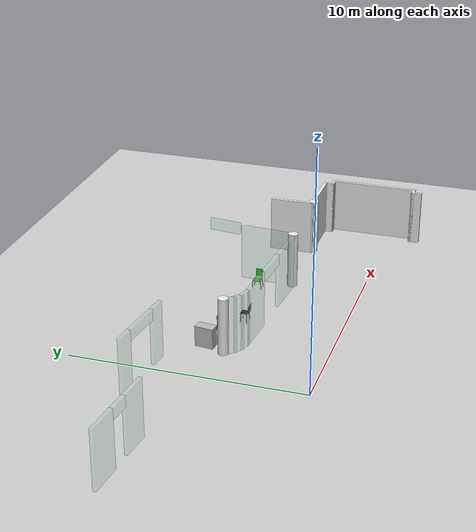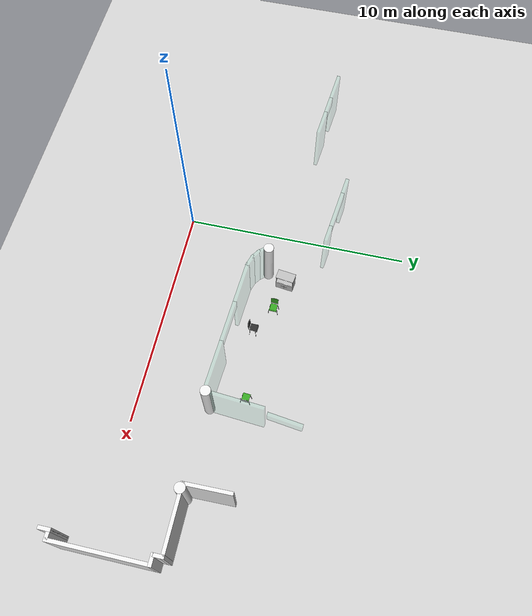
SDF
<sdf version="1.6">
 <world name="default">
  <model name="ground_plane">
   <static>1</static>
   <link name="link">
    <collision name="collision">
     <geometry><plane><normal>0 0 1</normal><size>100 100</size></plane></geometry>
     <surface><friction><ode><mu>100</mu><mu2>50</mu2></ode></friction></surface>
    </collision>
    <visual name="visual">
     <cast_shadows>0</cast_shadows>
     <geometry><plane><normal>0 0 1</normal><size>100 100</size></plane></geometry>
     <material>
      <script><uri>file://media/materials/scripts/gazebo.material</uri><name>Gazebo/Grey</name></script>
     </material>
    </visual>
   </link>
  </model>
  <model name="Glass_walls">
   <link name="Wall_10">
    <pose>8.18678 -0.842723 0 0 -0 1.49902</pose>
    <inertial>
     <mass>1</mass>
     <inertia><ixx>1</ixx><ixy>0</ixy><ixz>0</ixz><iyy>1</iyy><iyz>0</iyz><izz>1</izz></inertia>
    </inertial>
    <visual name="Wall_10_Visual">
     <pose>0 0 1.25 0 -0 0</pose>
     <geometry><box><size>2.51541 0.15 2.5</size></box></geometry>
     <material>
      <script><uri>file://media/materials/scripts/gazebo.material</uri><name>Gazebo/Grey</name></script>
      <ambient>0.435 0.796 0.675 1</ambient>
      <diffuse>0.7 0.7 0.7 1</diffuse>
      <specular>0.01 0.01 0.01 1</specular>
      <emissive>0 0 0 1</emissive>
      <shader type="vertex"><normal_map>__default__</normal_map></shader>
     </material>
     <meta><layer>0</layer></meta>
     <transparency>0.8</transparency>
    </visual>
    <collision name="Wall_10_Collision">
     <pose>0 0 1.25 0 -0 0</pose>
     <geometry><box><size>2.51541 0.15 2.5</size></box></geometry>
     <surface>
      <friction>
       <ode><mu>1</mu><mu2>1</mu2><fdir1>0 0 0</fdir1><slip1>0</slip1><slip2>0</slip2></ode>
       <torsional>
        <coefficient>1</coefficient>
        <patch_radius>0</patch_radius>
        <surface_radius>0</surface_radius>
        <use_patch_radius>1</use_patch_radius>
        <ode><slip>0</slip></ode>
       </torsional>
      </friction>
      <bounce><restitution_coefficient>0</restitution_coefficient><threshold>1e+06</threshold></bounce>
      <contact>
       <collide_without_contact>0</collide_without_contact>
       <collide_without_contact_bitmask>1</collide_without_contact_bitmask>
       <collide_bitmask>1</collide_bitmask>
       <ode>
        <soft_cfm>0</soft_cfm>
        <soft_erp>0.2</soft_erp>
        <kp>1e+13</kp>
        <kd>1</kd>
        <max_vel>0.01</max_vel>
        <min_depth>0</min_depth>
       </ode>
       <bullet>
        <split_impulse>1</split_impulse>
        <split_impulse_penetration_threshold>-0.01</split_impulse_penetration_threshold>
        <soft_cfm>0</soft_cfm>
        <soft_erp>0.2</soft_erp>
        <kp>1e+13</kp>
        <kd>1</kd>
       </bullet>
      </contact>
     </surface>
    </collision>
   </link>
   <link name="Wall_12">
    <pose>1.76645 -1.4266 0 0 0 -0.605125</pose>
    <inertial>
     <mass>1</mass>
     <inertia><ixx>1</ixx><ixy>0</ixy><ixz>0</ixz><iyy>1</iyy><iyz>0</iyz><izz>1</izz></inertia>
    </inertial>
    <visual name="Wall_12_Visual">
     <pose>0 0 1.25 0 -0 0</pose>
     <geometry><box><size>0.49057 0.15 2.5</size></box></geometry>
     <material>
      <script><uri>file://media/materials/scripts/gazebo.material</uri><name>Gazebo/Grey</name></script>
      <ambient>0.435 0.796 0.675 1</ambient>
      <diffuse>0.7 0.7 0.7 1</diffuse>
      <specular>0.01 0.01 0.01 1</specular>
      <emissive>0 0 0 1</emissive>
      <shader type="vertex"><normal_map>__default__</normal_map></shader>
     </material>
     <meta><layer>0</layer></meta>
     <transparency>0.8</transparency>
    </visual>
    <collision name="Wall_12_Collision">
     <pose>0 0 1.25 0 -0 0</pose>
     <geometry><box><size>0.49057 0.15 2.5</size></box></geometry>
     <surface>
      <friction>
       <ode><mu>1</mu><mu2>1</mu2><fdir1>0 0 0</fdir1><slip1>0</slip1><slip2>0</slip2></ode>
       <torsional>
        <coefficient>1</coefficient>
        <patch_radius>0</patch_radius>
        <surface_radius>0</surface_radius>
        <use_patch_radius>1</use_patch_radius>
        <ode><slip>0</slip></ode>
       </torsional>
      </friction>
      <bounce><restitution_coefficient>0</restitution_coefficient><threshold>1e+06</threshold></bounce>
      <contact>
       <collide_without_contact>0</collide_without_contact>
       <collide_without_contact_bitmask>1</collide_without_contact_bitmask>
       <collide_bitmask>1</collide_bitmask>
       <ode>
        <soft_cfm>0</soft_cfm>
        <soft_erp>0.2</soft_erp>
        <kp>1e+13</kp>
        <kd>1</kd>
        <max_vel>0.01</max_vel>
        <min_depth>0</min_depth>
       </ode>
       <bullet>
        <split_impulse>1</split_impulse>
        <split_impulse_penetration_threshold>-0.01</split_impulse_penetration_threshold>
        <soft_cfm>0</soft_cfm>
        <soft_erp>0.2</soft_erp>
        <kp>1e+13</kp>
        <kd>1</kd>
       </bullet>
      </contact>
     </surface>
    </collision>
   </link>
   <link name="Wall_13">
    <pose>2.11043 -1.58974 0 0 0 -0.314232</pose>
    <inertial>
     <mass>1</mass>
     <inertia><ixx>1</ixx><ixy>0</ixy><ixz>0</ixz><iyy>1</iyy><iyz>0</iyz><izz>1</izz></inertia>
    </inertial>
    <visual name="Wall_13_Visual">
     <pose>0 0 1.25 0 -0 0</pose>
     <geometry><box><size>0.57887 0.15 2.5</size></box></geometry>
     <material>
      <script><uri>file://media/materials/scripts/gazebo.material</uri><name>Gazebo/Grey</name></script>
      <ambient>0.435 0.796 0.675 1</ambient>
      <diffuse>0.7 0.7 0.7 1</diffuse>
      <specular>0.01 0.01 0.01 1</specular>
      <emissive>0 0 0 1</emissive>
      <shader type="vertex"><normal_map>__default__</normal_map></shader>
     </material>
     <meta><layer>0</layer></meta>
     <transparency>0.8</transparency>
    </visual>
    <collision name="Wall_13_Collision">
     <pose>0 0 1.25 0 -0 0</pose>
     <geometry><box><size>0.57887 0.15 2.5</size></box></geometry>
     <surface>
      <friction>
       <ode><mu>1</mu><mu2>1</mu2><fdir1>0 0 0</fdir1><slip1>0</slip1><slip2>0</slip2></ode>
       <torsional>
        <coefficient>1</coefficient>
        <patch_radius>0</patch_radius>
        <surface_radius>0</surface_radius>
        <use_patch_radius>1</use_patch_radius>
        <ode><slip>0</slip></ode>
       </torsional>
      </friction>
      <bounce><restitution_coefficient>0</restitution_coefficient><threshold>1e+06</threshold></bounce>
      <contact>
       <collide_without_contact>0</collide_without_contact>
       <collide_without_contact_bitmask>1</collide_without_contact_bitmask>
       <collide_bitmask>1</collide_bitmask>
       <ode>
        <soft_cfm>0</soft_cfm>
        <soft_erp>0.2</soft_erp>
        <kp>1e+13</kp>
        <kd>1</kd>
        <max_vel>0.01</max_vel>
        <min_depth>0</min_depth>
       </ode>
       <bullet>
        <split_impulse>1</split_impulse>
        <split_impulse_penetration_threshold>-0.01</split_impulse_penetration_threshold>
        <soft_cfm>0</soft_cfm>
        <soft_erp>0.2</soft_erp>
        <kp>1e+13</kp>
        <kd>1</kd>
       </bullet>
      </contact>
     </surface>
    </collision>
   </link>
   <link name="Wall_14">
    <pose>5.20817 -1.8392 0 0 0 -0.063217</pose>
    <inertial>
     <mass>1</mass>
     <inertia><ixx>1</ixx><ixy>0</ixy><ixz>0</ixz><iyy>1</iyy><iyz>0</iyz><izz>1</izz></inertia>
    </inertial>
    <visual name="Wall_14_Visual_2">
     <pose>-0.177864 0 2.25 0 -0 0</pose>
     <geometry><box><size>1.8 0.15 0.5</size></box></geometry>
     <material>
      <script><uri>file://media/materials/scripts/gazebo.material</uri><name>Gazebo/Grey</name></script>
      <ambient>0.435 0.796 0.675 1</ambient>
      <diffuse>0.7 0.7 0.7 1</diffuse>
      <specular>0.01 0.01 0.01 1</specular>
      <emissive>0 0 0 1</emissive>
      <shader type="vertex"><normal_map>__default__</normal_map></shader>
     </material>
     <meta><layer>0</layer></meta>
     <transparency>0.8</transparency>
    </visual>
    <visual name="Wall_14_Visual_1">
     <pose>1.84837 0 1.25 0 -0 0</pose>
     <geometry><box><size>2.25246 0.15 2.5</size></box></geometry>
     <material>
      <script><uri>file://media/materials/scripts/gazebo.material</uri><name>Gazebo/Grey</name></script>
      <ambient>0.435 0.796 0.675 1</ambient>
      <diffuse>0.7 0.7 0.7 1</diffuse>
      <specular>0.01 0.01 0.01 1</specular>
      <emissive>0 0 0 1</emissive>
      <shader type="vertex"><normal_map>__default__</normal_map></shader>
     </material>
     <meta><layer>0</layer></meta>
     <transparency>0.8</transparency>
    </visual>
    <visual name="Wall_14_Visual_0">
     <pose>-2.02623 0 1.25 0 -0 0</pose>
     <geometry><box><size>1.89673 0.15 2.5</size></box></geometry>
     <material>
      <script><uri>file://media/materials/scripts/gazebo.material</uri><name>Gazebo/Grey</name></script>
      <ambient>0.435 0.796 0.675 1</ambient>
      <diffuse>0.7 0.7 0.7 1</diffuse>
      <specular>0.01 0.01 0.01 1</specular>
      <emissive>0 0 0 1</emissive>
      <shader type="vertex"><normal_map>__default__</normal_map></shader>
     </material>
     <meta><layer>0</layer></meta>
     <transparency>0.8</transparency>
    </visual>
    <collision name="Wall_14_Collision_1">
     <pose>1.84837 0 1.25 0 -0 0</pose>
     <geometry><box><size>2.25246 0.15 2.5</size></box></geometry>
     <surface>
      <friction>
       <ode><mu>1</mu><mu2>1</mu2><fdir1>0 0 0</fdir1><slip1>0</slip1><slip2>0</slip2></ode>
       <torsional>
        <coefficient>1</coefficient>
        <patch_radius>0</patch_radius>
        <surface_radius>0</surface_radius>
        <use_patch_radius>1</use_patch_radius>
        <ode><slip>0</slip></ode>
       </torsional>
      </friction>
      <bounce><restitution_coefficient>0</restitution_coefficient><threshold>1e+06</threshold></bounce>
      <contact>
       <collide_without_contact>0</collide_without_contact>
       <collide_without_contact_bitmask>1</collide_without_contact_bitmask>
       <collide_bitmask>1</collide_bitmask>
       <ode>
        <soft_cfm>0</soft_cfm>
        <soft_erp>0.2</soft_erp>
        <kp>1e+13</kp>
        <kd>1</kd>
        <max_vel>0.01</max_vel>
        <min_depth>0</min_depth>
       </ode>
       <bullet>
        <split_impulse>1</split_impulse>
        <split_impulse_penetration_threshold>-0.01</split_impulse_penetration_threshold>
        <soft_cfm>0</soft_cfm>
        <soft_erp>0.2</soft_erp>
        <kp>1e+13</kp>
        <kd>1</kd>
       </bullet>
      </contact>
     </surface>
    </collision>
    <collision name="Wall_14_Collision_0">
     <pose>-2.02623 0 1.25 0 -0 0</pose>
     <geometry><box><size>1.89673 0.15 2.5</size></box></geometry>
     <surface>
      <friction>
       <ode><mu>1</mu><mu2>1</mu2><fdir1>0 0 0</fdir1><slip1>0</slip1><slip2>0</slip2></ode>
       <torsional>
        <coefficient>1</coefficient>
        <patch_radius>0</patch_radius>
        <surface_radius>0</surface_radius>
        <use_patch_radius>1</use_patch_radius>
        <ode><slip>0</slip></ode>
       </torsional>
      </friction>
      <bounce><restitution_coefficient>0</restitution_coefficient><threshold>1e+06</threshold></bounce>
      <contact>
       <collide_without_contact>0</collide_without_contact>
       <collide_without_contact_bitmask>1</collide_without_contact_bitmask>
       <collide_bitmask>1</collide_bitmask>
       <ode>
        <soft_cfm>0</soft_cfm>
        <soft_erp>0.2</soft_erp>
        <kp>1e+13</kp>
        <kd>1</kd>
        <max_vel>0.01</max_vel>
        <min_depth>0</min_depth>
       </ode>
       <bullet>
        <split_impulse>1</split_impulse>
        <split_impulse_penetration_threshold>-0.01</split_impulse_penetration_threshold>
        <soft_cfm>0</soft_cfm>
        <soft_erp>0.2</soft_erp>
        <kp>1e+13</kp>
        <kd>1</kd>
       </bullet>
      </contact>
     </surface>
    </collision>
    <collision name="Wall_14_Collision_2">
     <pose>-0.177864 0 2.25 0 -0 0</pose>
     <geometry><box><size>1.8 0.15 0.5</size></box></geometry>
     <surface>
      <friction>
       <ode><mu>1</mu><mu2>1</mu2><fdir1>0 0 0</fdir1><slip1>0</slip1><slip2>0</slip2></ode>
       <torsional>
        <coefficient>1</coefficient>
        <patch_radius>0</patch_radius>
        <surface_radius>0</surface_radius>
        <use_patch_radius>1</use_patch_radius>
        <ode><slip>0</slip></ode>
       </torsional>
      </friction>
      <bounce><restitution_coefficient>0</restitution_coefficient><threshold>1e+06</threshold></bounce>
      <contact>
       <collide_without_contact>0</collide_without_contact>
       <collide_without_contact_bitmask>1</collide_without_contact_bitmask>
       <collide_bitmask>1</collide_bitmask>
       <ode>
        <soft_cfm>0</soft_cfm>
        <soft_erp>0.2</soft_erp>
        <kp>1e+13</kp>
        <kd>1</kd>
        <max_vel>0.01</max_vel>
        <min_depth>0</min_depth>
       </ode>
       <bullet>
        <split_impulse>1</split_impulse>
        <split_impulse_penetration_threshold>-0.01</split_impulse_penetration_threshold>
        <soft_cfm>0</soft_cfm>
        <soft_erp>0.2</soft_erp>
        <kp>1e+13</kp>
        <kd>1</kd>
       </bullet>
      </contact>
     </surface>
    </collision>
   </link>
   <link name="Wall_16">
    <pose>-1.20178 1.53997 0 0 0 -0.111358</pose>
    <inertial>
     <mass>1</mass>
     <inertia><ixx>1</ixx><ixy>0</ixy><ixz>0</ixz><iyy>1</iyy><iyz>0</iyz><izz>1</izz></inertia>
    </inertial>
    <visual name="Wall_16_Visual_0">
     <pose>-1.28798 0 1.25 0 -0 0</pose>
     <geometry><box><size>0.785518 0.15 2.5</size></box></geometry>
     <material>
      <script><uri>file://media/materials/scripts/gazebo.material</uri><name>Gazebo/Grey</name></script>
      <ambient>0.435 0.796 0.675 1</ambient>
      <diffuse>0.7 0.7 0.7 1</diffuse>
      <specular>0.01 0.01 0.01 1</specular>
      <emissive>0 0 0 1</emissive>
      <shader type="vertex"><normal_map>__default__</normal_map></shader>
     </material>
     <meta><layer>0</layer></meta>
     <transparency>0.8</transparency>
    </visual>
    <visual name="Wall_16_Visual_1">
     <pose>1.29276 0 1.25 0 -0 0</pose>
     <geometry><box><size>0.775955 0.15 2.5</size></box></geometry>
     <material>
      <script><uri>file://media/materials/scripts/gazebo.material</uri><name>Gazebo/Grey</name></script>
      <ambient>0.435 0.796 0.675 1</ambient>
      <diffuse>0.7 0.7 0.7 1</diffuse>
      <specular>0.01 0.01 0.01 1</specular>
      <emissive>0 0 0 1</emissive>
      <shader type="vertex"><normal_map>__default__</normal_map></shader>
     </material>
     <meta><layer>0</layer></meta>
     <transparency>0.8</transparency>
    </visual>
    <visual name="Wall_16_Visual_2">
     <pose>0.004782 0 2.25 0 -0 0</pose>
     <geometry><box><size>1.8 0.15 0.5</size></box></geometry>
     <material>
      <script><uri>file://media/materials/scripts/gazebo.material</uri><name>Gazebo/Grey</name></script>
      <ambient>0.435 0.796 0.675 1</ambient>
      <diffuse>0.7 0.7 0.7 1</diffuse>
      <specular>0.01 0.01 0.01 1</specular>
      <emissive>0 0 0 1</emissive>
      <shader type="vertex"><normal_map>__default__</normal_map></shader>
     </material>
     <meta><layer>0</layer></meta>
     <transparency>0.8</transparency>
    </visual>
    <collision name="Wall_16_Collision_0">
     <pose>-1.28798 0 1.25 0 -0 0</pose>
     <geometry><box><size>0.785518 0.15 2.5</size></box></geometry>
     <surface>
      <friction>
       <ode><mu>1</mu><mu2>1</mu2><fdir1>0 0 0</fdir1><slip1>0</slip1><slip2>0</slip2></ode>
       <torsional>
        <coefficient>1</coefficient>
        <patch_radius>0</patch_radius>
        <surface_radius>0</surface_radius>
        <use_patch_radius>1</use_patch_radius>
        <ode><slip>0</slip></ode>
       </torsional>
      </friction>
      <bounce><restitution_coefficient>0</restitution_coefficient><threshold>1e+06</threshold></bounce>
      <contact>
       <collide_without_contact>0</collide_without_contact>
       <collide_without_contact_bitmask>1</collide_without_contact_bitmask>
       <collide_bitmask>1</collide_bitmask>
       <ode>
        <soft_cfm>0</soft_cfm>
        <soft_erp>0.2</soft_erp>
        <kp>1e+13</kp>
        <kd>1</kd>
        <max_vel>0.01</max_vel>
        <min_depth>0</min_depth>
       </ode>
       <bullet>
        <split_impulse>1</split_impulse>
        <split_impulse_penetration_threshold>-0.01</split_impulse_penetration_threshold>
        <soft_cfm>0</soft_cfm>
        <soft_erp>0.2</soft_erp>
        <kp>1e+13</kp>
        <kd>1</kd>
       </bullet>
      </contact>
     </surface>
    </collision>
    <collision name="Wall_16_Collision_2">
     <pose>0.004782 0 2.25 0 -0 0</pose>
     <geometry><box><size>1.8 0.15 0.5</size></box></geometry>
     <surface>
      <friction>
       <ode><mu>1</mu><mu2>1</mu2><fdir1>0 0 0</fdir1><slip1>0</slip1><slip2>0</slip2></ode>
       <torsional>
        <coefficient>1</coefficient>
        <patch_radius>0</patch_radius>
        <surface_radius>0</surface_radius>
        <use_patch_radius>1</use_patch_radius>
        <ode><slip>0</slip></ode>
       </torsional>
      </friction>
      <bounce><restitution_coefficient>0</restitution_coefficient><threshold>1e+06</threshold></bounce>
      <contact>
       <collide_without_contact>0</collide_without_contact>
       <collide_without_contact_bitmask>1</collide_without_contact_bitmask>
       <collide_bitmask>1</collide_bitmask>
       <ode>
        <soft_cfm>0</soft_cfm>
        <soft_erp>0.2</soft_erp>
        <kp>1e+13</kp>
        <kd>1</kd>
        <max_vel>0.01</max_vel>
        <min_depth>0</min_depth>
       </ode>
       <bullet>
        <split_impulse>1</split_impulse>
        <split_impulse_penetration_threshold>-0.01</split_impulse_penetration_threshold>
        <soft_cfm>0</soft_cfm>
        <soft_erp>0.2</soft_erp>
        <kp>1e+13</kp>
        <kd>1</kd>
       </bullet>
      </contact>
     </surface>
    </collision>
    <collision name="Wall_16_Collision_1">
     <pose>1.29276 0 1.25 0 -0 0</pose>
     <geometry><box><size>0.775955 0.15 2.5</size></box></geometry>
     <surface>
      <friction>
       <ode><mu>1</mu><mu2>1</mu2><fdir1>0 0 0</fdir1><slip1>0</slip1><slip2>0</slip2></ode>
       <torsional>
        <coefficient>1</coefficient>
        <patch_radius>0</patch_radius>
        <surface_radius>0</surface_radius>
        <use_patch_radius>1</use_patch_radius>
        <ode><slip>0</slip></ode>
       </torsional>
      </friction>
      <bounce><restitution_coefficient>0</restitution_coefficient><threshold>1e+06</threshold></bounce>
      <contact>
       <collide_without_contact>0</collide_without_contact>
       <collide_without_contact_bitmask>1</collide_without_contact_bitmask>
       <collide_bitmask>1</collide_bitmask>
       <ode>
        <soft_cfm>0</soft_cfm>
        <soft_erp>0.2</soft_erp>
        <kp>1e+13</kp>
        <kd>1</kd>
        <max_vel>0.01</max_vel>
        <min_depth>0</min_depth>
       </ode>
       <bullet>
        <split_impulse>1</split_impulse>
        <split_impulse_penetration_threshold>-0.01</split_impulse_penetration_threshold>
        <soft_cfm>0</soft_cfm>
        <soft_erp>0.2</soft_erp>
        <kp>1e+13</kp>
        <kd>1</kd>
       </bullet>
      </contact>
     </surface>
    </collision>
   </link>
   <link name="Wall_18">
    <pose>8.55334 1.28019 0.999398 0 -0 1.44515</pose>
    <inertial>
     <mass>1</mass>
     <pose>0 0 1.25 0 -0 0</pose>
     <inertia><ixx>1</ixx><ixy>0</ixy><ixz>0</ixz><iyy>1</iyy><iyz>0</iyz><izz>1</izz></inertia>
    </inertial>
    <visual name="Wall_18_Visual_0">
     <pose>0 0 1.25 0 -0 0</pose>
     <geometry><box><size>1.44127 0.15 0.5</size></box></geometry>
     <material>
      <script><uri>file://media/materials/scripts/gazebo.material</uri><name>Gazebo/Grey</name></script>
      <ambient>0.435 0.796 0.675 1</ambient>
      <diffuse>0.7 0.7 0.7 1</diffuse>
      <specular>0.01 0.01 0.01 1</specular>
      <emissive>0 0 0 1</emissive>
      <shader type="vertex"><normal_map>__default__</normal_map></shader>
     </material>
     <meta><layer>0</layer></meta>
     <transparency>0.8</transparency>
    </visual>
    <collision name="Wall_18_Collision_0">
     <pose>0 0 1.25 0 -0 0</pose>
     <geometry><box><size>1.44127 0.15 0.5</size></box></geometry>
     <surface>
      <friction>
       <ode><mu>1</mu><mu2>1</mu2><fdir1>0 0 0</fdir1><slip1>0</slip1><slip2>0</slip2></ode>
       <torsional>
        <coefficient>1</coefficient>
        <patch_radius>0</patch_radius>
        <surface_radius>0</surface_radius>
        <use_patch_radius>1</use_patch_radius>
        <ode><slip>0</slip></ode>
       </torsional>
      </friction>
      <bounce><restitution_coefficient>0</restitution_coefficient><threshold>1e+06</threshold></bounce>
      <contact>
       <collide_without_contact>0</collide_without_contact>
       <collide_without_contact_bitmask>1</collide_without_contact_bitmask>
       <collide_bitmask>1</collide_bitmask>
       <ode>
        <soft_cfm>0</soft_cfm>
        <soft_erp>0.2</soft_erp>
        <kp>1e+13</kp>
        <kd>1</kd>
        <max_vel>0.01</max_vel>
        <min_depth>0</min_depth>
       </ode>
       <bullet>
        <split_impulse>1</split_impulse>
        <split_impulse_penetration_threshold>-0.01</split_impulse_penetration_threshold>
        <soft_cfm>0</soft_cfm>
        <soft_erp>0.2</soft_erp>
        <kp>1e+13</kp>
        <kd>1</kd>
       </bullet>
      </contact>
     </surface>
    </collision>
   </link>
   <link name="Wall_4">
    <pose>-6.95661 0.126193 -0.003941 0 0 -0.091842</pose>
    <inertial>
     <mass>1</mass>
     <inertia><ixx>1</ixx><ixy>0</ixy><ixz>0</ixz><iyy>1</iyy><iyz>0</iyz><izz>1</izz></inertia>
    </inertial>
    <visual name="Wall_4_Visual_0">
     <pose>-1.09152 0 1.25 0 -0 0</pose>
     <geometry><box><size>1.41183 0.15 2.5</size></box></geometry>
     <material>
      <script><uri>file://media/materials/scripts/gazebo.material</uri><name>Gazebo/Grey</name></script>
      <ambient>0.435 0.796 0.675 1</ambient>
      <diffuse>0.7 0.7 0.7 1</diffuse>
      <specular>0.01 0.01 0.01 1</specular>
      <emissive>0 0 0 1</emissive>
      <shader type="vertex"><normal_map>__default__</normal_map></shader>
     </material>
     <meta><layer>0</layer></meta>
     <transparency>0.8</transparency>
    </visual>
    <visual name="Wall_4_Visual_2">
     <pose>0.064394 0 2.25 0 -0 0</pose>
     <geometry><box><size>0.9 0.15 0.5</size></box></geometry>
     <material>
      <script><uri>file://media/materials/scripts/gazebo.material</uri><name>Gazebo/Grey</name></script>
      <ambient>0.435 0.796 0.675 1</ambient>
      <diffuse>0.7 0.7 0.7 1</diffuse>
      <specular>0.01 0.01 0.01 1</specular>
      <emissive>0 0 0 1</emissive>
      <shader type="vertex"><normal_map>__default__</normal_map></shader>
     </material>
     <meta><layer>0</layer></meta>
     <transparency>0.8</transparency>
    </visual>
    <visual name="Wall_4_Visual_1">
     <pose>1.15592 0 1.25 0 -0 0</pose>
     <geometry><box><size>1.28304 0.15 2.5</size></box></geometry>
     <material>
      <script><uri>file://media/materials/scripts/gazebo.material</uri><name>Gazebo/Grey</name></script>
      <ambient>0.435 0.796 0.675 1</ambient>
      <diffuse>0.7 0.7 0.7 1</diffuse>
      <specular>0.01 0.01 0.01 1</specular>
      <emissive>0 0 0 1</emissive>
      <shader type="vertex"><normal_map>__default__</normal_map></shader>
     </material>
     <meta><layer>0</layer></meta>
     <transparency>0.8</transparency>
    </visual>
    <collision name="Wall_4_Collision_0">
     <pose>-1.09152 0 1.25 0 -0 0</pose>
     <geometry><box><size>1.41183 0.15 2.5</size></box></geometry>
     <surface>
      <friction>
       <ode><mu>1</mu><mu2>1</mu2><fdir1>0 0 0</fdir1><slip1>0</slip1><slip2>0</slip2></ode>
       <torsional>
        <coefficient>1</coefficient>
        <patch_radius>0</patch_radius>
        <surface_radius>0</surface_radius>
        <use_patch_radius>1</use_patch_radius>
        <ode><slip>0</slip></ode>
       </torsional>
      </friction>
      <bounce><restitution_coefficient>0</restitution_coefficient><threshold>1e+06</threshold></bounce>
      <contact>
       <collide_without_contact>0</collide_without_contact>
       <collide_without_contact_bitmask>1</collide_without_contact_bitmask>
       <collide_bitmask>1</collide_bitmask>
       <ode>
        <soft_cfm>0</soft_cfm>
        <soft_erp>0.2</soft_erp>
        <kp>1e+13</kp>
        <kd>1</kd>
        <max_vel>0.01</max_vel>
        <min_depth>0</min_depth>
       </ode>
       <bullet>
        <split_impulse>1</split_impulse>
        <split_impulse_penetration_threshold>-0.01</split_impulse_penetration_threshold>
        <soft_cfm>0</soft_cfm>
        <soft_erp>0.2</soft_erp>
        <kp>1e+13</kp>
        <kd>1</kd>
       </bullet>
      </contact>
     </surface>
    </collision>
    <collision name="Wall_4_Collision_1">
     <pose>1.15592 0 1.25 0 -0 0</pose>
     <geometry><box><size>1.28304 0.15 2.5</size></box></geometry>
     <surface>
      <friction>
       <ode><mu>1</mu><mu2>1</mu2><fdir1>0 0 0</fdir1><slip1>0</slip1><slip2>0</slip2></ode>
       <torsional>
        <coefficient>1</coefficient>
        <patch_radius>0</patch_radius>
        <surface_radius>0</surface_radius>
        <use_patch_radius>1</use_patch_radius>
        <ode><slip>0</slip></ode>
       </torsional>
      </friction>
      <bounce><restitution_coefficient>0</restitution_coefficient><threshold>1e+06</threshold></bounce>
      <contact>
       <collide_without_contact>0</collide_without_contact>
       <collide_without_contact_bitmask>1</collide_without_contact_bitmask>
       <collide_bitmask>1</collide_bitmask>
       <ode>
        <soft_cfm>0</soft_cfm>
        <soft_erp>0.2</soft_erp>
        <kp>1e+13</kp>
        <kd>1</kd>
        <max_vel>0.01</max_vel>
        <min_depth>0</min_depth>
       </ode>
       <bullet>
        <split_impulse>1</split_impulse>
        <split_impulse_penetration_threshold>-0.01</split_impulse_penetration_threshold>
        <soft_cfm>0</soft_cfm>
        <soft_erp>0.2</soft_erp>
        <kp>1e+13</kp>
        <kd>1</kd>
       </bullet>
      </contact>
     </surface>
    </collision>
    <collision name="Wall_4_Collision_2">
     <pose>0.064394 0 2.25 0 -0 0</pose>
     <geometry><box><size>0.9 0.15 0.5</size></box></geometry>
     <surface>
      <friction>
       <ode><mu>1</mu><mu2>1</mu2><fdir1>0 0 0</fdir1><slip1>0</slip1><slip2>0</slip2></ode>
       <torsional>
        <coefficient>1</coefficient>
        <patch_radius>0</patch_radius>
        <surface_radius>0</surface_radius>
        <use_patch_radius>1</use_patch_radius>
        <ode><slip>0</slip></ode>
       </torsional>
      </friction>
      <bounce><restitution_coefficient>0</restitution_coefficient><threshold>1e+06</threshold></bounce>
      <contact>
       <collide_without_contact>0</collide_without_contact>
       <collide_without_contact_bitmask>1</collide_without_contact_bitmask>
       <collide_bitmask>1</collide_bitmask>
       <ode>
        <soft_cfm>0</soft_cfm>
        <soft_erp>0.2</soft_erp>
        <kp>1e+13</kp>
        <kd>1</kd>
        <max_vel>0.01</max_vel>
        <min_depth>0</min_depth>
       </ode>
       <bullet>
        <split_impulse>1</split_impulse>
        <split_impulse_penetration_threshold>-0.01</split_impulse_penetration_threshold>
        <soft_cfm>0</soft_cfm>
        <soft_erp>0.2</soft_erp>
        <kp>1e+13</kp>
        <kd>1</kd>
       </bullet>
      </contact>
     </surface>
    </collision>
   </link>
   <link name="Wall_6">
    <pose>1.50015 -1.18229 0 0 0 -0.862665</pose>
    <inertial>
     <mass>1</mass>
     <inertia><ixx>1</ixx><ixy>0</ixy><ixz>0</ixz><iyy>1</iyy><iyz>0</iyz><izz>1</izz></inertia>
    </inertial>
    <visual name="Wall_6_Visual">
     <pose>0 0 1.25 0 -0 0</pose>
     <geometry><box><size>0.538201 0.15 2.5</size></box></geometry>
     <material>
      <script><uri>file://media/materials/scripts/gazebo.material</uri><name>Gazebo/Grey</name></script>
      <ambient>0.435 0.796 0.675 1</ambient>
      <diffuse>0.7 0.7 0.7 1</diffuse>
      <specular>0.01 0.01 0.01 1</specular>
      <emissive>0 0 0 1</emissive>
      <shader type="vertex"><normal_map>__default__</normal_map></shader>
     </material>
     <meta><layer>0</layer></meta>
     <transparency>0.8</transparency>
    </visual>
    <collision name="Wall_6_Collision">
     <pose>0 0 1.25 0 -0 0</pose>
     <geometry><box><size>0.538201 0.15 2.5</size></box></geometry>
     <surface>
      <friction>
       <ode><mu>1</mu><mu2>1</mu2><fdir1>0 0 0</fdir1><slip1>0</slip1><slip2>0</slip2></ode>
       <torsional>
        <coefficient>1</coefficient>
        <patch_radius>0</patch_radius>
        <surface_radius>0</surface_radius>
        <use_patch_radius>1</use_patch_radius>
        <ode><slip>0</slip></ode>
       </torsional>
      </friction>
      <bounce><restitution_coefficient>0</restitution_coefficient><threshold>1e+06</threshold></bounce>
      <contact>
       <collide_without_contact>0</collide_without_contact>
       <collide_without_contact_bitmask>1</collide_without_contact_bitmask>
       <collide_bitmask>1</collide_bitmask>
       <ode>
        <soft_cfm>0</soft_cfm>
        <soft_erp>0.2</soft_erp>
        <kp>1e+13</kp>
        <kd>1</kd>
        <max_vel>0.01</max_vel>
        <min_depth>0</min_depth>
       </ode>
       <bullet>
        <split_impulse>1</split_impulse>
        <split_impulse_penetration_threshold>-0.01</split_impulse_penetration_threshold>
        <soft_cfm>0</soft_cfm>
        <soft_erp>0.2</soft_erp>
        <kp>1e+13</kp>
        <kd>1</kd>
       </bullet>
      </contact>
     </surface>
    </collision>
   </link>
   <static>1</static>
   <pose>0.66554 5.08189 0 0 -0 0</pose>
  </model>
  <model name="ucu_basic_frame.world">
   <link name="Wall_298">
    <pose>14.1849 -4.82541 0 0 -0 1.5708</pose>
    <visual name="Wall_298_Visual">
     <pose>0 0 1.25 0 -0 0</pose>
     <geometry><box><size>0.5 0.15 2.5</size></box></geometry>
     <material>
      <script><uri>file://media/materials/scripts/gazebo.material</uri><name>Gazebo/White</name></script>
      <ambient>1 1 1 1</ambient>
      <diffuse>1 1 1 1</diffuse>
      <specular>0 0 0 1</specular>
      <emissive>0 0 0 1</emissive>
     </material>
     <meta><layer>0</layer></meta>
    </visual>
    <collision name="Wall_298_Collision">
     <pose>0 0 1.25 0 -0 0</pose>
     <geometry><box><size>0.5 0.15 2.5</size></box></geometry>
     <surface>
      <friction>
       <ode><mu>1</mu><mu2>1</mu2><fdir1>0 0 0</fdir1><slip1>0</slip1><slip2>0</slip2></ode>
       <torsional>
        <coefficient>1</coefficient>
        <patch_radius>0</patch_radius>
        <surface_radius>0</surface_radius>
        <use_patch_radius>1</use_patch_radius>
        <ode><slip>0</slip></ode>
       </torsional>
      </friction>
      <bounce><restitution_coefficient>0</restitution_coefficient><threshold>1e+06</threshold></bounce>
      <contact>
       <collide_without_contact>0</collide_without_contact>
       <collide_without_contact_bitmask>1</collide_without_contact_bitmask>
       <collide_bitmask>1</collide_bitmask>
       <ode>
        <soft_cfm>0</soft_cfm>
        <soft_erp>0.2</soft_erp>
        <kp>1e+13</kp>
        <kd>1</kd>
        <max_vel>0.01</max_vel>
        <min_depth>0</min_depth>
       </ode>
       <bullet>
        <split_impulse>1</split_impulse>
        <split_impulse_penetration_threshold>-0.01</split_impulse_penetration_threshold>
        <soft_cfm>0</soft_cfm>
        <soft_erp>0.2</soft_erp>
        <kp>1e+13</kp>
        <kd>1</kd>
       </bullet>
      </contact>
     </surface>
    </collision>
   </link>
   <link name="Wall_299">
    <pose>14.3599 -4.65041 0 0 -0 0</pose>
    <visual name="Wall_299_Visual">
     <pose>0 0 1.25 0 -0 0</pose>
     <geometry><box><size>0.5 0.15 2.5</size></box></geometry>
     <material>
      <script><uri>file://media/materials/scripts/gazebo.material</uri><name>Gazebo/White</name></script>
      <ambient>1 1 1 1</ambient>
      <diffuse>1 1 1 1</diffuse>
      <specular>0 0 0 1</specular>
      <emissive>0 0 0 1</emissive>
     </material>
     <meta><layer>0</layer></meta>
    </visual>
    <collision name="Wall_299_Collision">
     <pose>0 0 1.25 0 -0 0</pose>
     <geometry><box><size>0.5 0.15 2.5</size></box></geometry>
     <surface>
      <friction>
       <ode><mu>1</mu><mu2>1</mu2><fdir1>0 0 0</fdir1><slip1>0</slip1><slip2>0</slip2></ode>
       <torsional>
        <coefficient>1</coefficient>
        <patch_radius>0</patch_radius>
        <surface_radius>0</surface_radius>
        <use_patch_radius>1</use_patch_radius>
        <ode><slip>0</slip></ode>
       </torsional>
      </friction>
      <bounce><restitution_coefficient>0</restitution_coefficient><threshold>1e+06</threshold></bounce>
      <contact>
       <collide_without_contact>0</collide_without_contact>
       <collide_without_contact_bitmask>1</collide_without_contact_bitmask>
       <collide_bitmask>1</collide_bitmask>
       <ode>
        <soft_cfm>0</soft_cfm>
        <soft_erp>0.2</soft_erp>
        <kp>1e+13</kp>
        <kd>1</kd>
        <max_vel>0.01</max_vel>
        <min_depth>0</min_depth>
       </ode>
       <bullet>
        <split_impulse>1</split_impulse>
        <split_impulse_penetration_threshold>-0.01</split_impulse_penetration_threshold>
        <soft_cfm>0</soft_cfm>
        <soft_erp>0.2</soft_erp>
        <kp>1e+13</kp>
        <kd>1</kd>
       </bullet>
      </contact>
     </surface>
    </collision>
   </link>
   <link name="Wall_302">
    <pose>14.5349 -2.72541 0 0 -0 1.5708</pose>
    <visual name="Wall_302_Visual">
     <pose>0 0 1.25 0 -0 0</pose>
     <geometry><box><size>4 0.15 2.5</size></box></geometry>
     <material>
      <script><uri>file://media/materials/scripts/gazebo.material</uri><name>Gazebo/White</name></script>
      <ambient>1 1 1 1</ambient>
      <diffuse>1 1 1 1</diffuse>
      <specular>0 0 0 1</specular>
      <emissive>0 0 0 1</emissive>
     </material>
     <meta><layer>0</layer></meta>
    </visual>
    <collision name="Wall_302_Collision">
     <pose>0 0 1.25 0 -0 0</pose>
     <geometry><box><size>4 0.15 2.5</size></box></geometry>
     <surface>
      <friction>
       <ode><mu>1</mu><mu2>1</mu2><fdir1>0 0 0</fdir1><slip1>0</slip1><slip2>0</slip2></ode>
       <torsional>
        <coefficient>1</coefficient>
        <patch_radius>0</patch_radius>
        <surface_radius>0</surface_radius>
        <use_patch_radius>1</use_patch_radius>
        <ode><slip>0</slip></ode>
       </torsional>
      </friction>
      <bounce><restitution_coefficient>0</restitution_coefficient><threshold>1e+06</threshold></bounce>
      <contact>
       <collide_without_contact>0</collide_without_contact>
       <collide_without_contact_bitmask>1</collide_without_contact_bitmask>
       <collide_bitmask>1</collide_bitmask>
       <ode>
        <soft_cfm>0</soft_cfm>
        <soft_erp>0.2</soft_erp>
        <kp>1e+13</kp>
        <kd>1</kd>
        <max_vel>0.01</max_vel>
        <min_depth>0</min_depth>
       </ode>
       <bullet>
        <split_impulse>1</split_impulse>
        <split_impulse_penetration_threshold>-0.01</split_impulse_penetration_threshold>
        <soft_cfm>0</soft_cfm>
        <soft_erp>0.2</soft_erp>
        <kp>1e+13</kp>
        <kd>1</kd>
       </bullet>
      </contact>
     </surface>
    </collision>
   </link>
   <link name="Wall_303">
    <pose>14.3599 -0.800407 0 0 -0 3.14159</pose>
    <visual name="Wall_303_Visual">
     <pose>0 0 1.25 0 -0 0</pose>
     <geometry><box><size>0.5 0.15 2.5</size></box></geometry>
     <material>
      <script><uri>file://media/materials/scripts/gazebo.material</uri><name>Gazebo/White</name></script>
      <ambient>1 1 1 1</ambient>
      <diffuse>1 1 1 1</diffuse>
      <specular>0 0 0 1</specular>
      <emissive>0 0 0 1</emissive>
     </material>
     <meta><layer>0</layer></meta>
    </visual>
    <collision name="Wall_303_Collision">
     <pose>0 0 1.25 0 -0 0</pose>
     <geometry><box><size>0.5 0.15 2.5</size></box></geometry>
     <surface>
      <friction>
       <ode><mu>1</mu><mu2>1</mu2><fdir1>0 0 0</fdir1><slip1>0</slip1><slip2>0</slip2></ode>
       <torsional>
        <coefficient>1</coefficient>
        <patch_radius>0</patch_radius>
        <surface_radius>0</surface_radius>
        <use_patch_radius>1</use_patch_radius>
        <ode><slip>0</slip></ode>
       </torsional>
      </friction>
      <bounce><restitution_coefficient>0</restitution_coefficient><threshold>1e+06</threshold></bounce>
      <contact>
       <collide_without_contact>0</collide_without_contact>
       <collide_without_contact_bitmask>1</collide_without_contact_bitmask>
       <collide_bitmask>1</collide_bitmask>
       <ode>
        <soft_cfm>0</soft_cfm>
        <soft_erp>0.2</soft_erp>
        <kp>1e+13</kp>
        <kd>1</kd>
        <max_vel>0.01</max_vel>
        <min_depth>0</min_depth>
       </ode>
       <bullet>
        <split_impulse>1</split_impulse>
        <split_impulse_penetration_threshold>-0.01</split_impulse_penetration_threshold>
        <soft_cfm>0</soft_cfm>
        <soft_erp>0.2</soft_erp>
        <kp>1e+13</kp>
        <kd>1</kd>
       </bullet>
      </contact>
     </surface>
    </collision>
   </link>
   <link name="Wall_305">
    <pose>14.1849 -0.625407 0 0 -0 1.5708</pose>
    <visual name="Wall_305_Visual">
     <pose>0 0 1.25 0 -0 0</pose>
     <geometry><box><size>0.5 0.15 2.5</size></box></geometry>
     <material>
      <script><uri>file://media/materials/scripts/gazebo.material</uri><name>Gazebo/White</name></script>
      <ambient>1 1 1 1</ambient>
      <diffuse>1 1 1 1</diffuse>
      <specular>0 0 0 1</specular>
      <emissive>0 0 0 1</emissive>
     </material>
     <meta><layer>0</layer></meta>
    </visual>
    <collision name="Wall_305_Collision">
     <pose>0 0 1.25 0 -0 0</pose>
     <geometry><box><size>0.5 0.15 2.5</size></box></geometry>
     <surface>
      <friction>
       <ode><mu>1</mu><mu2>1</mu2><fdir1>0 0 0</fdir1><slip1>0</slip1><slip2>0</slip2></ode>
       <torsional>
        <coefficient>1</coefficient>
        <patch_radius>0</patch_radius>
        <surface_radius>0</surface_radius>
        <use_patch_radius>1</use_patch_radius>
        <ode><slip>0</slip></ode>
       </torsional>
      </friction>
      <bounce><restitution_coefficient>0</restitution_coefficient><threshold>1e+06</threshold></bounce>
      <contact>
       <collide_without_contact>0</collide_without_contact>
       <collide_without_contact_bitmask>1</collide_without_contact_bitmask>
       <collide_bitmask>1</collide_bitmask>
       <ode>
        <soft_cfm>0</soft_cfm>
        <soft_erp>0.2</soft_erp>
        <kp>1e+13</kp>
        <kd>1</kd>
        <max_vel>0.01</max_vel>
        <min_depth>0</min_depth>
       </ode>
       <bullet>
        <split_impulse>1</split_impulse>
        <split_impulse_penetration_threshold>-0.01</split_impulse_penetration_threshold>
        <soft_cfm>0</soft_cfm>
        <soft_erp>0.2</soft_erp>
        <kp>1e+13</kp>
        <kd>1</kd>
       </bullet>
      </contact>
     </surface>
    </collision>
   </link>
   <link name="Wall_306">
    <pose>12.8849 -0.450407 0 0 -0 3.14159</pose>
    <visual name="Wall_306_Visual">
     <pose>0 0 1.25 0 -0 0</pose>
     <geometry><box><size>2.75 0.15 2.5</size></box></geometry>
     <material>
      <script><uri>file://media/materials/scripts/gazebo.material</uri><name>Gazebo/White</name></script>
      <ambient>1 1 1 1</ambient>
      <diffuse>1 1 1 1</diffuse>
      <specular>0 0 0 1</specular>
      <emissive>0 0 0 1</emissive>
     </material>
     <meta><layer>0</layer></meta>
    </visual>
    <collision name="Wall_306_Collision">
     <pose>0 0 1.25 0 -0 0</pose>
     <geometry><box><size>2.75 0.15 2.5</size></box></geometry>
     <surface>
      <friction>
       <ode><mu>1</mu><mu2>1</mu2><fdir1>0 0 0</fdir1><slip1>0</slip1><slip2>0</slip2></ode>
       <torsional>
        <coefficient>1</coefficient>
        <patch_radius>0</patch_radius>
        <surface_radius>0</surface_radius>
        <use_patch_radius>1</use_patch_radius>
        <ode><slip>0</slip></ode>
       </torsional>
      </friction>
      <bounce><restitution_coefficient>0</restitution_coefficient><threshold>1e+06</threshold></bounce>
      <contact>
       <collide_without_contact>0</collide_without_contact>
       <collide_without_contact_bitmask>1</collide_without_contact_bitmask>
       <collide_bitmask>1</collide_bitmask>
       <ode>
        <soft_cfm>0</soft_cfm>
        <soft_erp>0.2</soft_erp>
        <kp>1e+13</kp>
        <kd>1</kd>
        <max_vel>0.01</max_vel>
        <min_depth>0</min_depth>
       </ode>
       <bullet>
        <split_impulse>1</split_impulse>
        <split_impulse_penetration_threshold>-0.01</split_impulse_penetration_threshold>
        <soft_cfm>0</soft_cfm>
        <soft_erp>0.2</soft_erp>
        <kp>1e+13</kp>
        <kd>1</kd>
       </bullet>
      </contact>
     </surface>
    </collision>
   </link>
   <link name="Wall_308">
    <pose>11.5681 0.474593 0 0 -0 1.589</pose>
    <visual name="Wall_308_Visual">
     <pose>0 0 1.25 0 -0 0</pose>
     <geometry><box><size>2.00031 0.15 2.5</size></box></geometry>
     <material>
      <script><uri>file://media/materials/scripts/gazebo.material</uri><name>Gazebo/White</name></script>
      <ambient>1 1 1 1</ambient>
      <diffuse>1 1 1 1</diffuse>
      <specular>0 0 0 1</specular>
      <emissive>0 0 0 1</emissive>
     </material>
     <meta><layer>0</layer></meta>
    </visual>
    <collision name="Wall_308_Collision">
     <pose>0 0 1.25 0 -0 0</pose>
     <geometry><box><size>2.00031 0.15 2.5</size></box></geometry>
     <surface>
      <friction>
       <ode><mu>1</mu><mu2>1</mu2><fdir1>0 0 0</fdir1><slip1>0</slip1><slip2>0</slip2></ode>
       <torsional>
        <coefficient>1</coefficient>
        <patch_radius>0</patch_radius>
        <surface_radius>0</surface_radius>
        <use_patch_radius>1</use_patch_radius>
        <ode><slip>0</slip></ode>
       </torsional>
      </friction>
      <bounce><restitution_coefficient>0</restitution_coefficient><threshold>1e+06</threshold></bounce>
      <contact>
       <collide_without_contact>0</collide_without_contact>
       <collide_without_contact_bitmask>1</collide_without_contact_bitmask>
       <collide_bitmask>1</collide_bitmask>
       <ode>
        <soft_cfm>0</soft_cfm>
        <soft_erp>0.2</soft_erp>
        <kp>1e+13</kp>
        <kd>1</kd>
        <max_vel>0.01</max_vel>
        <min_depth>0</min_depth>
       </ode>
       <bullet>
        <split_impulse>1</split_impulse>
        <split_impulse_penetration_threshold>-0.01</split_impulse_penetration_threshold>
        <soft_cfm>0</soft_cfm>
        <soft_erp>0.2</soft_erp>
        <kp>1e+13</kp>
        <kd>1</kd>
       </bullet>
      </contact>
     </surface>
    </collision>
   </link>
   <link name="link_0_clone">
    <pose>1.27753 0.492834 1.26135 0 -0 0</pose>
    <inertial>
     <mass>1</mass>
     <inertia><ixx>0.145833</ixx><ixy>0</ixy><ixz>0</ixz><iyy>0.145833</iyy><iyz>0</iyz><izz>0.125</izz></inertia>
     <pose>0 0 1.25 0 -0 0</pose>
    </inertial>
    <visual name="visual">
     <geometry><cylinder><radius>0.22</radius><length>2.5</length></cylinder></geometry>
     <material>
      <lighting>1</lighting>
      <script><uri>file://media/materials/scripts/gazebo.material</uri><name>Gazebo/White</name></script>
      <ambient>1 1 1 1</ambient>
      <diffuse>1 1 1 1</diffuse>
      <specular>0 0 0 1</specular>
      <emissive>0 0 0 1</emissive>
      <shader type="vertex"><normal_map>__default__</normal_map></shader>
     </material>
    </visual>
    <collision name="collision">
     <geometry><cylinder><radius>0.22</radius><length>2.5</length></cylinder></geometry>
     <surface>
      <friction>
       <ode><mu>1</mu><mu2>1</mu2><fdir1>0 0 0</fdir1><slip1>0</slip1><slip2>0</slip2></ode>
       <torsional>
        <coefficient>1</coefficient>
        <patch_radius>0</patch_radius>
        <surface_radius>0</surface_radius>
        <use_patch_radius>1</use_patch_radius>
        <ode><slip>0</slip></ode>
       </torsional>
      </friction>
      <bounce><restitution_coefficient>0</restitution_coefficient><threshold>1e+06</threshold></bounce>
      <contact>
       <collide_without_contact>0</collide_without_contact>
       <collide_without_contact_bitmask>1</collide_without_contact_bitmask>
       <collide_bitmask>1</collide_bitmask>
       <ode>
        <soft_cfm>0</soft_cfm>
        <soft_erp>0.2</soft_erp>
        <kp>1e+13</kp>
        <kd>1</kd>
        <max_vel>0.01</max_vel>
        <min_depth>0</min_depth>
       </ode>
       <bullet>
        <split_impulse>1</split_impulse>
        <split_impulse_penetration_threshold>-0.01</split_impulse_penetration_threshold>
        <soft_cfm>0</soft_cfm>
        <soft_erp>0.2</soft_erp>
        <kp>1e+13</kp>
        <kd>1</kd>
       </bullet>
      </contact>
     </surface>
    </collision>
   </link>
   <link name="link_0_clone_0">
    <pose>7.99694 -0.529806 1.26135 0 -0 0</pose>
    <inertial>
     <mass>1</mass>
     <inertia><ixx>0.145833</ixx><ixy>0</ixy><ixz>0</ixz><iyy>0.145833</iyy><iyz>0</iyz><izz>0.125</izz></inertia>
     <pose>0 0 1.25 0 -0 0</pose>
    </inertial>
    <visual name="visual">
     <geometry><cylinder><radius>0.22</radius><length>2.5</length></cylinder></geometry>
     <material>
      <lighting>1</lighting>
      <script><uri>file://media/materials/scripts/gazebo.material</uri><name>Gazebo/White</name></script>
      <ambient>1 1 1 1</ambient>
      <diffuse>1 1 1 1</diffuse>
      <specular>0 0 0 1</specular>
      <emissive>0 0 0 1</emissive>
      <shader type="vertex"><normal_map>__default__</normal_map></shader>
     </material>
    </visual>
    <collision name="collision">
     <geometry><cylinder><radius>0.22</radius><length>2.5</length></cylinder></geometry>
     <surface>
      <friction>
       <ode><mu>1</mu><mu2>1</mu2><fdir1>0 0 0</fdir1><slip1>0</slip1><slip2>0</slip2></ode>
       <torsional>
        <coefficient>1</coefficient>
        <patch_radius>0</patch_radius>
        <surface_radius>0</surface_radius>
        <use_patch_radius>1</use_patch_radius>
        <ode><slip>0</slip></ode>
       </torsional>
      </friction>
      <bounce><restitution_coefficient>0</restitution_coefficient><threshold>1e+06</threshold></bounce>
      <contact>
       <collide_without_contact>0</collide_without_contact>
       <collide_without_contact_bitmask>1</collide_without_contact_bitmask>
       <collide_bitmask>1</collide_bitmask>
       <ode>
        <soft_cfm>0</soft_cfm>
        <soft_erp>0.2</soft_erp>
        <kp>1e+13</kp>
        <kd>1</kd>
        <max_vel>0.01</max_vel>
        <min_depth>0</min_depth>
       </ode>
       <bullet>
        <split_impulse>1</split_impulse>
        <split_impulse_penetration_threshold>-0.01</split_impulse_penetration_threshold>
        <soft_cfm>0</soft_cfm>
        <soft_erp>0.2</soft_erp>
        <kp>1e+13</kp>
        <kd>1</kd>
       </bullet>
      </contact>
     </surface>
    </collision>
   </link>
   <link name="link_0_clone_1">
    <pose>11.7676 -0.493633 1.26135 0 -0 0</pose>
    <inertial>
     <mass>1</mass>
     <inertia><ixx>0.145833</ixx><ixy>0</ixy><ixz>0</ixz><iyy>0.145833</iyy><iyz>0</iyz><izz>0.125</izz></inertia>
     <pose>0 0 1.25 0 -0 0</pose>
    </inertial>
    <visual name="visual">
     <geometry><cylinder><radius>0.22</radius><length>2.5</length></cylinder></geometry>
     <material>
      <lighting>1</lighting>
      <script><uri>file://media/materials/scripts/gazebo.material</uri><name>Gazebo/White</name></script>
      <ambient>1 1 1 1</ambient>
      <diffuse>1 1 1 1</diffuse>
      <specular>0 0 0 1</specular>
      <emissive>0 0 0 1</emissive>
      <shader type="vertex"><normal_map>__default__</normal_map></shader>
     </material>
    </visual>
    <collision name="collision">
     <geometry><cylinder><radius>0.22</radius><length>2.5</length></cylinder></geometry>
     <surface>
      <friction>
       <ode><mu>1</mu><mu2>1</mu2><fdir1>0 0 0</fdir1><slip1>0</slip1><slip2>0</slip2></ode>
       <torsional>
        <coefficient>1</coefficient>
        <patch_radius>0</patch_radius>
        <surface_radius>0</surface_radius>
        <use_patch_radius>1</use_patch_radius>
        <ode><slip>0</slip></ode>
       </torsional>
      </friction>
      <bounce><restitution_coefficient>0</restitution_coefficient><threshold>1e+06</threshold></bounce>
      <contact>
       <collide_without_contact>0</collide_without_contact>
       <collide_without_contact_bitmask>1</collide_without_contact_bitmask>
       <collide_bitmask>1</collide_bitmask>
       <ode>
        <soft_cfm>0</soft_cfm>
        <soft_erp>0.2</soft_erp>
        <kp>1e+13</kp>
        <kd>1</kd>
        <max_vel>0.01</max_vel>
        <min_depth>0</min_depth>
       </ode>
       <bullet>
        <split_impulse>1</split_impulse>
        <split_impulse_penetration_threshold>-0.01</split_impulse_penetration_threshold>
        <soft_cfm>0</soft_cfm>
        <soft_erp>0.2</soft_erp>
        <kp>1e+13</kp>
        <kd>1</kd>
       </bullet>
      </contact>
     </surface>
    </collision>
   </link>
   <static>1</static>
   <pose>0.7577 3.6363 0 0 -0 0</pose>
  </model>
  <model name="locker_015">
   <pose>2.38999 4.99 0.450769 0 1.1e-05 1.45002</pose>
   <static>0</static>
   <link name="model_body">
    <visual name="visual">
     <geometry>
      <mesh><uri>model://robert_gazebo/meshes/locker_008_visual.dae</uri><scale>1 1 1</scale></mesh>
     </geometry>
    </visual>
    <collision name="collision">
     <geometry>
      <mesh><uri>model://robert_gazebo/meshes/locker_008_collision.dae</uri><scale>1 1 1</scale></mesh>
     </geometry>
    </collision>
    <inertial>
     <inertia><ixx>0.69</ixx><ixy>0</ixy><ixz>0</ixz><iyy>1.19</iyy><iyz>0</iyz><izz>0.78</izz></inertia>
     <mass>10</mass>
    </inertial>
   </link>
  </model>
  <model name="classroom_chair_015_1_1">
   <pose>3.75003 4.74007 0.445362 3.3e-05 0.000144 1.5399</pose>
   <static>0</static>
   <link name="model_body">
    <visual name="visual">
     <geometry>
      <mesh>
       <uri>model://robert_gazebo/meshes/classroom_chair_green_visual.dae</uri>
       <scale>100 100 100</scale>
      </mesh>
     </geometry>
    </visual>
    <collision name="collision">
     <geometry>
      <mesh><uri>model://robert_gazebo/meshes/classroom_chair_collision.dae</uri><scale>1 1 1</scale></mesh>
     </geometry>
    </collision>
    <inertial>
     <inertia><ixx>0.34</ixx><ixy>0</ixy><ixz>0</ixz><iyy>0.34</iyy><iyz>0</iyz><izz>0.18</izz></inertia>
     <mass>5</mass>
    </inertial>
   </link>
  </model>
  <model name="classroom_chair_015_1_4">
   <pose>4.90478 4.08898 0.445359 7e-06 0.000138 3.09509</pose>
   <static>0</static>
   <link name="model_body">
    <visual name="visual">
     <geometry>
      <mesh><uri>model://robert_gazebo/meshes/classroom_chair_grey_visual.dae</uri><scale>100 100 100</scale></mesh>
     </geometry>
    </visual>
    <collision name="collision">
     <geometry>
      <mesh><uri>model://robert_gazebo/meshes/classroom_chair_collision.dae</uri><scale>1 1 1</scale></mesh>
     </geometry>
    </collision>
    <inertial>
     <inertia><ixx>0.34</ixx><ixy>0</ixy><ixz>0</ixz><iyy>0.34</iyy><iyz>0</iyz><izz>0.18</izz></inertia>
     <mass>5</mass>
    </inertial>
   </link>
  </model>
  <model name="classroom_chair_015_2_3">
   <pose>8.07998 4.49994 0.445361 1.4e-05 0.000132 -1.65006</pose>
   <static>0</static>
   <link name="model_body">
    <visual name="visual">
     <geometry>
      <mesh>
       <uri>model://robert_gazebo/meshes/classroom_chair_green_visual.dae</uri>
       <scale>100 100 100</scale>
      </mesh>
     </geometry>
    </visual>
    <collision name="collision">
     <geometry>
      <mesh><uri>model://robert_gazebo/meshes/classroom_chair_collision.dae</uri><scale>1 1 1</scale></mesh>
     </geometry>
    </collision>
    <inertial>
     <inertia><ixx>0.34</ixx><ixy>0</ixy><ixz>0</ixz><iyy>0.34</iyy><iyz>0</iyz><izz>0.18</izz></inertia>
     <mass>5</mass>
    </inertial>
   </link>
  </model>
 </world>
</sdf>
